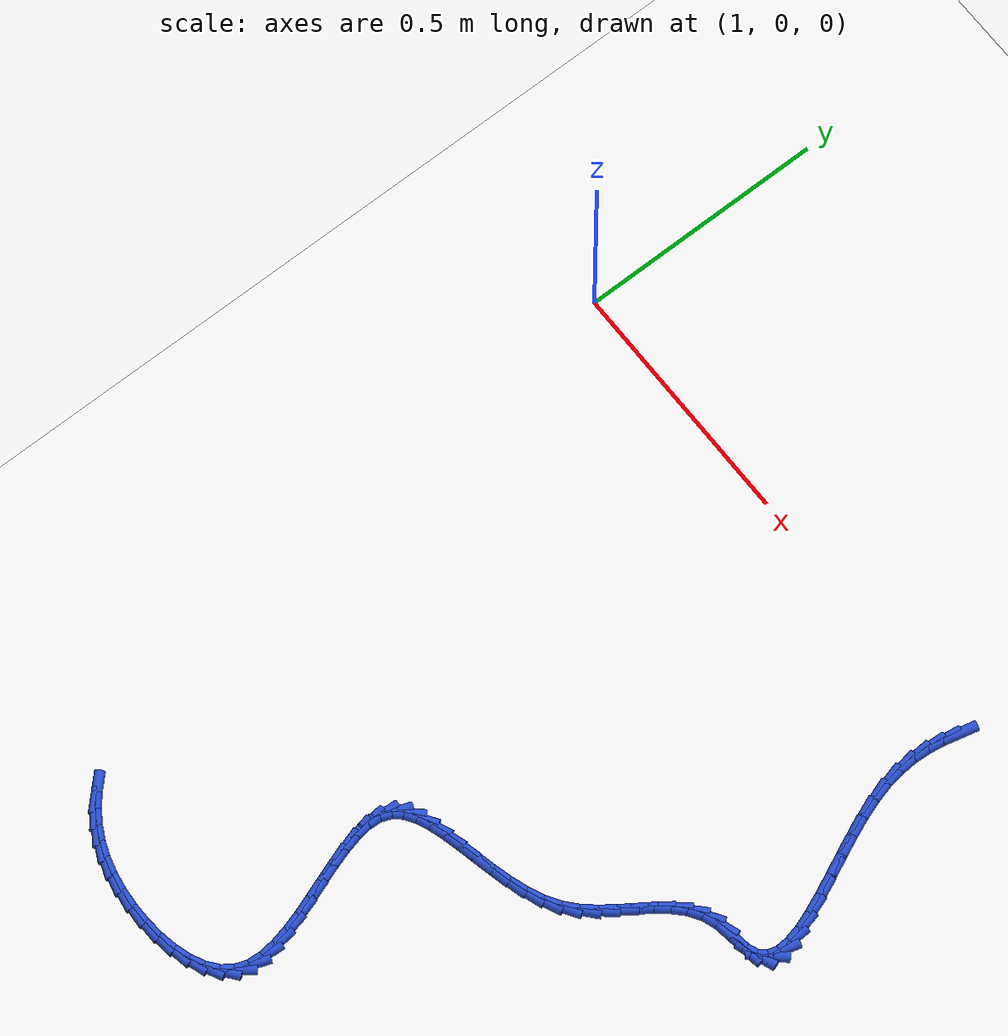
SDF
<sdf version="1.6">
 <world name="default">
  <model name="ground_plane">
   <static>1</static>
   <link name="link">
    <collision name="collision">
     <geometry><plane><normal>0 0 1</normal><size>100 100</size></plane></geometry>
     <surface><friction><ode><mu>100</mu><mu2>50</mu2></ode></friction></surface>
    </collision>
    <visual name="visual">
     <cast_shadows>0</cast_shadows>
     <geometry><plane><normal>0 0 1</normal><size>100 100</size></plane></geometry>
     <material>
      <script><uri>file://media/materials/scripts/gazebo.material</uri><name>Gazebo/WhiteGlow</name></script>
     </material>
    </visual>
   </link>
  </model>
  <model name="line">
   <link name="link_134">
    <pose>2.0532246523718296 -0.014180326723908926 0.01 0 1.57 1.330796894045094</pose>
    <collision name="collision">
     <geometry><cylinder><radius>0.01</radius><length>0.08</length></cylinder></geometry>
    </collision>
    <visual name="visual">
     <material>
      <script><name>Gazebo/Blue</name><uri>file://media/materials/scripts/gazebo.material</uri></script>
     </material>
     <geometry><cylinder><radius>0.01</radius><length>0.08</length></cylinder></geometry>
    </visual>
   </link>
   <link name="link_135">
    <pose>2.046154351031306 -0.043072178536533924 0.01 0 1.57 1.4222208318434437</pose>
    <collision name="collision">
     <geometry><cylinder><radius>0.01</radius><length>0.08</length></cylinder></geometry>
    </collision>
    <visual name="visual">
     <material>
      <script><name>Gazebo/Blue</name><uri>file://media/materials/scripts/gazebo.material</uri></script>
     </material>
     <geometry><cylinder><radius>0.01</radius><length>0.08</length></cylinder></geometry>
    </visual>
   </link>
   <link name="link_136">
    <pose>2.0416905816031337 -0.07289456322484658 0.01 0 1.57 1.5224544691791195</pose>
    <collision name="collision">
     <geometry><cylinder><radius>0.01</radius><length>0.08</length></cylinder></geometry>
    </collision>
    <visual name="visual">
     <material>
      <script><name>Gazebo/Blue</name><uri>file://media/materials/scripts/gazebo.material</uri></script>
     </material>
     <geometry><cylinder><radius>0.01</radius><length>0.08</length></cylinder></geometry>
    </visual>
   </link>
   <link name="link_137">
    <pose>2.040192248023933 -0.10386495413796595 0.01 0 1.57 -1.5143862495319844</pose>
    <collision name="collision">
     <geometry><cylinder><radius>0.01</radius><length>0.08</length></cylinder></geometry>
    </collision>
    <visual name="visual">
     <material>
      <script><name>Gazebo/Blue</name><uri>file://media/materials/scripts/gazebo.material</uri></script>
     </material>
     <geometry><cylinder><radius>0.01</radius><length>0.08</length></cylinder></geometry>
    </visual>
   </link>
   <link name="link_138">
    <pose>2.0420182542303227 -0.13620082462501418 0.01 0 1.57 -1.4097779234324692</pose>
    <collision name="collision">
     <geometry><cylinder><radius>0.01</radius><length>0.08</length></cylinder></geometry>
    </collision>
    <visual name="visual">
     <material>
      <script><name>Gazebo/Blue</name><uri>file://media/materials/scripts/gazebo.material</uri></script>
     </material>
     <geometry><cylinder><radius>0.01</radius><length>0.08</length></cylinder></geometry>
    </visual>
   </link>
   <link name="link_139">
    <pose>2.0475275041589223 -0.17011964803510976 0.01 0 1.57 -1.3099488879277494</pose>
    <collision name="collision">
     <geometry><cylinder><radius>0.01</radius><length>0.08</length></cylinder></geometry>
    </collision>
    <visual name="visual">
     <material>
      <script><name>Gazebo/Blue</name><uri>file://media/materials/scripts/gazebo.material</uri></script>
     </material>
     <geometry><cylinder><radius>0.01</radius><length>0.08</length></cylinder></geometry>
    </visual>
   </link>
   <link name="link_140">
    <pose>2.0570587652187364 -0.20582672921039344 0.01 0 1.57 -1.2299598485326666</pose>
    <collision name="collision">
     <geometry><cylinder><radius>0.01</radius><length>0.08</length></cylinder></geometry>
    </collision>
    <visual name="visual">
     <material>
      <script><name>Gazebo/Blue</name><uri>file://media/materials/scripts/gazebo.material</uri></script>
     </material>
     <geometry><cylinder><radius>0.01</radius><length>0.08</length></cylinder></geometry>
    </visual>
   </link>
   <link name="link_141">
    <pose>2.070288388467689 -0.24312707468204922 0.01 0 1.57 -1.1785982197315994</pose>
    <collision name="collision">
     <geometry><cylinder><radius>0.01</radius><length>0.08</length></cylinder></geometry>
    </collision>
    <visual name="visual">
     <material>
      <script><name>Gazebo/Blue</name><uri>file://media/materials/scripts/gazebo.material</uri></script>
     </material>
     <geometry><cylinder><radius>0.01</radius><length>0.08</length></cylinder></geometry>
    </visual>
   </link>
   <link name="link_142">
    <pose>2.0860960352224343 -0.2813442512383151 0.01 0 1.57 -1.1495665495712435</pose>
    <collision name="collision">
     <geometry><cylinder><radius>0.01</radius><length>0.08</length></cylinder></geometry>
    </collision>
    <visual name="visual">
     <material>
      <script><name>Gazebo/Blue</name><uri>file://media/materials/scripts/gazebo.material</uri></script>
     </material>
     <geometry><cylinder><radius>0.01</radius><length>0.08</length></cylinder></geometry>
    </visual>
   </link>
   <link name="link_143">
    <pose>2.103314088485448 -0.3197732553743234 0.01 0 1.57 -1.1394321719167497</pose>
    <collision name="collision">
     <geometry><cylinder><radius>0.01</radius><length>0.08</length></cylinder></geometry>
    </collision>
    <visual name="visual">
     <material>
      <script><name>Gazebo/Blue</name><uri>file://media/materials/scripts/gazebo.material</uri></script>
     </material>
     <geometry><cylinder><radius>0.01</radius><length>0.08</length></cylinder></geometry>
    </visual>
   </link>
   <link name="link_144">
    <pose>2.1207749312592035 -0.3577090835852017 0.01 0 1.57 -1.1478501996417236</pose>
    <collision name="collision">
     <geometry><cylinder><radius>0.01</radius><length>0.08</length></cylinder></geometry>
    </collision>
    <visual name="visual">
     <material>
      <script><name>Gazebo/Blue</name><uri>file://media/materials/scripts/gazebo.material</uri></script>
     </material>
     <geometry><cylinder><radius>0.01</radius><length>0.08</length></cylinder></geometry>
    </visual>
   </link>
   <link name="link_145">
    <pose>2.137310946546176 -0.3944467323660825 0.01 0 1.57 -1.1777380187251918</pose>
    <collision name="collision">
     <geometry><cylinder><radius>0.01</radius><length>0.08</length></cylinder></geometry>
    </collision>
    <visual name="visual">
     <material>
      <script><name>Gazebo/Blue</name><uri>file://media/materials/scripts/gazebo.material</uri></script>
     </material>
     <geometry><cylinder><radius>0.01</radius><length>0.08</length></cylinder></geometry>
    </visual>
   </link>
   <link name="link_146">
    <pose>2.1517545173488393 -0.42928119821209365 0.01 0 1.57 -1.2367691804471364</pose>
    <collision name="collision">
     <geometry><cylinder><radius>0.01</radius><length>0.08</length></cylinder></geometry>
    </collision>
    <visual name="visual">
     <material>
      <script><name>Gazebo/Blue</name><uri>file://media/materials/scripts/gazebo.material</uri></script>
     </material>
     <geometry><cylinder><radius>0.01</radius><length>0.08</length></cylinder></geometry>
    </visual>
   </link>
   <link name="link_147">
    <pose>2.1629380266696687 -0.46150747761836725 0.01 0 1.57 -1.3412546699868313</pose>
    <collision name="collision">
     <geometry><cylinder><radius>0.01</radius><length>0.08</length></cylinder></geometry>
    </collision>
    <visual name="visual">
     <material>
      <script><name>Gazebo/Blue</name><uri>file://media/materials/scripts/gazebo.material</uri></script>
     </material>
     <geometry><cylinder><radius>0.01</radius><length>0.08</length></cylinder></geometry>
    </visual>
   </link>
   <link name="link_148">
    <pose>2.1696938575111373 -0.4904205670800312 0.01 0 1.57 -1.5242126506233136</pose>
    <collision name="collision">
     <geometry><cylinder><radius>0.01</radius><length>0.08</length></cylinder></geometry>
    </collision>
    <visual name="visual">
     <material>
      <script><name>Gazebo/Blue</name><uri>file://media/materials/scripts/gazebo.material</uri></script>
     </material>
     <geometry><cylinder><radius>0.01</radius><length>0.08</length></cylinder></geometry>
    </visual>
   </link>
   <link name="link_149">
    <pose>2.170854392875721 -0.5153154630922175 0.01 0 1.57 1.2998896380855545</pose>
    <collision name="collision">
     <geometry><cylinder><radius>0.01</radius><length>0.08</length></cylinder></geometry>
    </collision>
    <visual name="visual">
     <material>
      <script><name>Gazebo/Blue</name><uri>file://media/materials/scripts/gazebo.material</uri></script>
     </material>
     <geometry><cylinder><radius>0.01</radius><length>0.08</length></cylinder></geometry>
    </visual>
   </link>
   <link name="link_150">
    <pose>2.165252015765893 -0.5354871621500548 0.01 0 1.57 0.8281848322031834</pose>
    <collision name="collision">
     <geometry><cylinder><radius>0.01</radius><length>0.08</length></cylinder></geometry>
    </collision>
    <visual name="visual">
     <material>
      <script><name>Gazebo/Blue</name><uri>file://media/materials/scripts/gazebo.material</uri></script>
     </material>
     <geometry><cylinder><radius>0.01</radius><length>0.08</length></cylinder></geometry>
    </visual>
   </link>
   <link name="link_151">
    <pose>2.15171910918413 -0.5502306607486738 0.01 0 1.57 0.3648313273554256</pose>
    <collision name="collision">
     <geometry><cylinder><radius>0.01</radius><length>0.08</length></cylinder></geometry>
    </collision>
    <visual name="visual">
     <material>
      <script><name>Gazebo/Blue</name><uri>file://media/materials/scripts/gazebo.material</uri></script>
     </material>
     <geometry><cylinder><radius>0.01</radius><length>0.08</length></cylinder></geometry>
    </visual>
   </link>
   <link name="link_152">
    <pose>2.1291146852565244 -0.5588639405568624 0.01 0 1.57 0.13124890468324446</pose>
    <collision name="collision">
     <geometry><cylinder><radius>0.01</radius><length>0.08</length></cylinder></geometry>
    </collision>
    <visual name="visual">
     <material>
      <script><name>Gazebo/Blue</name><uri>file://media/materials/scripts/gazebo.material</uri></script>
     </material>
     <geometry><cylinder><radius>0.01</radius><length>0.08</length></cylinder></geometry>
    </visual>
   </link>
   <link name="link_153">
    <pose>2.0988009009974857 -0.5628655958406734 0.01 0 1.57 0.1466052524842702</pose>
    <collision name="collision">
     <geometry><cylinder><radius>0.01</radius><length>0.08</length></cylinder></geometry>
    </collision>
    <visual name="visual">
     <material>
      <script><name>Gazebo/Blue</name><uri>file://media/materials/scripts/gazebo.material</uri></script>
     </material>
     <geometry><cylinder><radius>0.01</radius><length>0.08</length></cylinder></geometry>
    </visual>
   </link>
   <link name="link_154">
    <pose>2.0666559408491967 -0.567612271592508 0.01 0 1.57 0.3477822611670278</pose>
    <collision name="collision">
     <geometry><cylinder><radius>0.01</radius><length>0.08</length></cylinder></geometry>
    </collision>
    <visual name="visual">
     <material>
      <script><name>Gazebo/Blue</name><uri>file://media/materials/scripts/gazebo.material</uri></script>
     </material>
     <geometry><cylinder><radius>0.01</radius><length>0.08</length></cylinder></geometry>
    </visual>
   </link>
   <link name="link_155">
    <pose>2.038073233551004 -0.5779739969091205 0.01 0 1.57 0.584012017187059</pose>
    <collision name="collision">
     <geometry><cylinder><radius>0.01</radius><length>0.08</length></cylinder></geometry>
    </collision>
    <visual name="visual">
     <material>
      <script><name>Gazebo/Blue</name><uri>file://media/materials/scripts/gazebo.material</uri></script>
     </material>
     <geometry><cylinder><radius>0.01</radius><length>0.08</length></cylinder></geometry>
    </visual>
   </link>
   <link name="link_156">
    <pose>2.013573378534224 -0.5941663859674395 0.01 0 1.57 0.7693353140724397</pose>
    <collision name="collision">
     <geometry><cylinder><radius>0.01</radius><length>0.08</length></cylinder></geometry>
    </collision>
    <visual name="visual">
     <material>
      <script><name>Gazebo/Blue</name><uri>file://media/materials/scripts/gazebo.material</uri></script>
     </material>
     <geometry><cylinder><radius>0.01</radius><length>0.08</length></cylinder></geometry>
    </visual>
   </link>
   <link name="link_157">
    <pose>1.9921322335939566 -0.6149295511230869 0.01 0 1.57 0.8923070942743198</pose>
    <collision name="collision">
     <geometry><cylinder><radius>0.01</radius><length>0.08</length></cylinder></geometry>
    </collision>
    <visual name="visual">
     <material>
      <script><name>Gazebo/Blue</name><uri>file://media/materials/scripts/gazebo.material</uri></script>
     </material>
     <geometry><cylinder><radius>0.01</radius><length>0.08</length></cylinder></geometry>
    </visual>
   </link>
   <link name="link_158">
    <pose>1.9727250353273396 -0.6390030113776278 0.01 0 1.57 0.9572058177261786</pose>
    <collision name="collision">
     <geometry><cylinder><radius>0.01</radius><length>0.08</length></cylinder></geometry>
    </collision>
    <visual name="visual">
     <material>
      <script><name>Gazebo/Blue</name><uri>file://media/materials/scripts/gazebo.material</uri></script>
     </material>
     <geometry><cylinder><radius>0.01</radius><length>0.08</length></cylinder></geometry>
    </visual>
   </link>
   <link name="link_159">
    <pose>1.9543270203315126 -0.6651262857326246 0.01 0 1.57 0.9707535589638124</pose>
    <collision name="collision">
     <geometry><cylinder><radius>0.01</radius><length>0.08</length></cylinder></geometry>
    </collision>
    <visual name="visual">
     <material>
      <script><name>Gazebo/Blue</name><uri>file://media/materials/scripts/gazebo.material</uri></script>
     </material>
     <geometry><cylinder><radius>0.01</radius><length>0.08</length></cylinder></geometry>
    </visual>
   </link>
   <link name="link_160">
    <pose>1.935913425203612 -0.692038893189641 0.01 0 1.57 0.9364867314761454</pose>
    <collision name="collision">
     <geometry><cylinder><radius>0.01</radius><length>0.08</length></cylinder></geometry>
    </collision>
    <visual name="visual">
     <material>
      <script><name>Gazebo/Blue</name><uri>file://media/materials/scripts/gazebo.material</uri></script>
     </material>
     <geometry><cylinder><radius>0.01</radius><length>0.08</length></cylinder></geometry>
    </visual>
   </link>
   <link name="link_161">
    <pose>1.9164594865407782 -0.7184803527502428 0.01 0 1.57 0.8543103418585201</pose>
    <collision name="collision">
     <geometry><cylinder><radius>0.01</radius><length>0.08</length></cylinder></geometry>
    </collision>
    <visual name="visual">
     <material>
      <script><name>Gazebo/Blue</name><uri>file://media/materials/scripts/gazebo.material</uri></script>
     </material>
     <geometry><cylinder><radius>0.01</radius><length>0.08</length></cylinder></geometry>
    </visual>
   </link>
   <link name="link_162">
    <pose>1.8949404409401496 -0.7431901834159912 0.01 0 1.57 0.7230700837270486</pose>
    <collision name="collision">
     <geometry><cylinder><radius>0.01</radius><length>0.08</length></cylinder></geometry>
    </collision>
    <visual name="visual">
     <material>
      <script><name>Gazebo/Blue</name><uri>file://media/materials/scripts/gazebo.material</uri></script>
     </material>
     <geometry><cylinder><radius>0.01</radius><length>0.08</length></cylinder></geometry>
    </visual>
   </link>
   <link name="link_163">
    <pose>1.8703315249988646 -0.7649079041884521 0.01 0 1.57 0.5594150345667862</pose>
    <collision name="collision">
     <geometry><cylinder><radius>0.01</radius><length>0.08</length></cylinder></geometry>
    </collision>
    <visual name="visual">
     <material>
      <script><name>Gazebo/Blue</name><uri>file://media/materials/scripts/gazebo.material</uri></script>
     </material>
     <geometry><cylinder><radius>0.01</radius><length>0.08</length></cylinder></geometry>
    </visual>
   </link>
   <link name="link_164">
    <pose>1.8419275662839238 -0.7826926151292007 0.01 0 1.57 0.4244976088249944</pose>
    <collision name="collision">
     <geometry><cylinder><radius>0.01</radius><length>0.08</length></cylinder></geometry>
    </collision>
    <visual name="visual">
     <material>
      <script><name>Gazebo/Blue</name><uri>file://media/materials/scripts/gazebo.material</uri></script>
     </material>
     <geometry><cylinder><radius>0.01</radius><length>0.08</length></cylinder></geometry>
    </visual>
   </link>
   <link name="link_165">
    <pose>1.8103741037505483 -0.7969540858052978 0.01 0 1.57 0.328975985001567</pose>
    <collision name="collision">
     <geometry><cylinder><radius>0.01</radius><length>0.08</length></cylinder></geometry>
    </collision>
    <visual name="visual">
     <material>
      <script><name>Gazebo/Blue</name><uri>file://media/materials/scripts/gazebo.material</uri></script>
     </material>
     <geometry><cylinder><radius>0.01</radius><length>0.08</length></cylinder></geometry>
    </visual>
   </link>
   <link name="link_166">
    <pose>1.7766734530623214 -0.8084588514292593 0.01 0 1.57 0.2665531659210687</pose>
    <collision name="collision">
     <geometry><cylinder><radius>0.01</radius><length>0.08</length></cylinder></geometry>
    </collision>
    <visual name="visual">
     <material>
      <script><name>Gazebo/Blue</name><uri>file://media/materials/scripts/gazebo.material</uri></script>
     </material>
     <geometry><cylinder><radius>0.01</radius><length>0.08</length></cylinder></geometry>
    </visual>
   </link>
   <link name="link_167">
    <pose>1.7418279319691445 -0.8179734492998629 0.01 0 1.57 0.23267380699856835</pose>
    <collision name="collision">
     <geometry><cylinder><radius>0.01</radius><length>0.08</length></cylinder></geometry>
    </collision>
    <visual name="visual">
     <material>
      <script><name>Gazebo/Blue</name><uri>file://media/materials/scripts/gazebo.material</uri></script>
     </material>
     <geometry><cylinder><radius>0.01</radius><length>0.08</length></cylinder></geometry>
    </visual>
   </link>
   <link name="link_168">
    <pose>1.706839858220927 -0.8262644167158857 0.01 0 1.57 0.2256331893948783</pose>
    <collision name="collision">
     <geometry><cylinder><radius>0.01</radius><length>0.08</length></cylinder></geometry>
    </collision>
    <visual name="visual">
     <material>
      <script><name>Gazebo/Blue</name><uri>file://media/materials/scripts/gazebo.material</uri></script>
     </material>
     <geometry><cylinder><radius>0.01</radius><length>0.08</length></cylinder></geometry>
    </visual>
   </link>
   <link name="link_169">
    <pose>1.6727115495675706 -0.8340982909761044 0.01 0 1.57 0.24721648304733315</pose>
    <collision name="collision">
     <geometry><cylinder><radius>0.01</radius><length>0.08</length></cylinder></geometry>
    </collision>
    <visual name="visual">
     <material>
      <script><name>Gazebo/Blue</name><uri>file://media/materials/scripts/gazebo.material</uri></script>
     </material>
     <geometry><cylinder><radius>0.01</radius><length>0.08</length></cylinder></geometry>
    </visual>
   </link>
   <link name="link_170">
    <pose>1.6404453237589833 -0.8422416093792966 0.01 0 1.57 0.30385223803553446</pose>
    <collision name="collision">
     <geometry><cylinder><radius>0.01</radius><length>0.08</length></cylinder></geometry>
    </collision>
    <visual name="visual">
     <material>
      <script><name>Gazebo/Blue</name><uri>file://media/materials/scripts/gazebo.material</uri></script>
     </material>
     <geometry><cylinder><radius>0.01</radius><length>0.08</length></cylinder></geometry>
    </visual>
   </link>
   <link name="link_171">
    <pose>1.611043498545069 -0.851460909224239 0.01 0 1.57 0.40879590833716223</pose>
    <collision name="collision">
     <geometry><cylinder><radius>0.01</radius><length>0.08</length></cylinder></geometry>
    </collision>
    <visual name="visual">
     <material>
      <script><name>Gazebo/Blue</name><uri>file://media/materials/scripts/gazebo.material</uri></script>
     </material>
     <geometry><cylinder><radius>0.01</radius><length>0.08</length></cylinder></geometry>
    </visual>
   </link>
   <link name="link_172">
    <pose>1.5855083916757333 -0.8625227278097093 0.01 0 1.57 0.5844261937588887</pose>
    <collision name="collision">
     <geometry><cylinder><radius>0.01</radius><length>0.08</length></cylinder></geometry>
    </collision>
    <visual name="visual">
     <material>
      <script><name>Gazebo/Blue</name><uri>file://media/materials/scripts/gazebo.material</uri></script>
     </material>
     <geometry><cylinder><radius>0.01</radius><length>0.08</length></cylinder></geometry>
    </visual>
   </link>
   <link name="link_173">
    <pose>1.5648423209008815 -0.8761936024344836 0.01 0 1.57 0.8559988193514022</pose>
    <collision name="collision">
     <geometry><cylinder><radius>0.01</radius><length>0.08</length></cylinder></geometry>
    </collision>
    <visual name="visual">
     <material>
      <script><name>Gazebo/Blue</name><uri>file://media/materials/scripts/gazebo.material</uri></script>
     </material>
     <geometry><cylinder><radius>0.01</radius><length>0.08</length></cylinder></geometry>
    </visual>
   </link>
   <link name="link_174">
    <pose>1.5500476039704185 -0.8932400703973402 0.01 0 1.57 1.2070682495283374</pose>
    <collision name="collision">
     <geometry><cylinder><radius>0.01</radius><length>0.08</length></cylinder></geometry>
    </collision>
    <visual name="visual">
     <material>
      <script><name>Gazebo/Blue</name><uri>file://media/materials/scripts/gazebo.material</uri></script>
     </material>
     <geometry><cylinder><radius>0.01</radius><length>0.08</length></cylinder></geometry>
    </visual>
   </link>
   <link name="link_175">
    <pose>1.5420107547033803 -0.9143527199068225 0.01 0 1.57 1.5046483054805113</pose>
    <collision name="collision">
     <geometry><cylinder><radius>0.01</radius><length>0.08</length></cylinder></geometry>
    </collision>
    <visual name="visual">
     <material>
      <script><name>Gazebo/Blue</name><uri>file://media/materials/scripts/gazebo.material</uri></script>
     </material>
     <geometry><cylinder><radius>0.01</radius><length>0.08</length></cylinder></geometry>
    </visual>
   </link>
   <link name="link_176">
    <pose>1.5403520563019273 -0.9393916918571801 0.01 0 1.57 -1.4457437224903855</pose>
    <collision name="collision">
     <geometry><cylinder><radius>0.01</radius><length>0.08</length></cylinder></geometry>
    </collision>
    <visual name="visual">
     <material>
      <script><name>Gazebo/Blue</name><uri>file://media/materials/scripts/gazebo.material</uri></script>
     </material>
     <geometry><cylinder><radius>0.01</radius><length>0.08</length></cylinder></geometry>
    </visual>
   </link>
   <link name="link_177">
    <pose>1.5439113141313336 -0.9677052569391799 0.01 0 1.57 -1.3296760468069413</pose>
    <collision name="collision">
     <geometry><cylinder><radius>0.01</radius><length>0.08</length></cylinder></geometry>
    </collision>
    <visual name="visual">
     <material>
      <script><name>Gazebo/Blue</name><uri>file://media/materials/scripts/gazebo.material</uri></script>
     </material>
     <geometry><cylinder><radius>0.01</radius><length>0.08</length></cylinder></geometry>
    </visual>
   </link>
   <link name="link_178">
    <pose>1.5515168691468275 -0.9986341670011281 0.01 0 1.57 -1.2622802091808014</pose>
    <collision name="collision">
     <geometry><cylinder><radius>0.01</radius><length>0.08</length></cylinder></geometry>
    </collision>
    <visual name="visual">
     <material>
      <script><name>Gazebo/Blue</name><uri>file://media/materials/scripts/gazebo.material</uri></script>
     </material>
     <geometry><cylinder><radius>0.01</radius><length>0.08</length></cylinder></geometry>
    </visual>
   </link>
   <link name="link_179">
    <pose>1.5619970623036357 -1.0315191738913259 0.01 0 1.57 -1.2284116646601082</pose>
    <collision name="collision">
     <geometry><cylinder><radius>0.01</radius><length>0.08</length></cylinder></geometry>
    </collision>
    <visual name="visual">
     <material>
      <script><name>Gazebo/Blue</name><uri>file://media/materials/scripts/gazebo.material</uri></script>
     </material>
     <geometry><cylinder><radius>0.01</radius><length>0.08</length></cylinder></geometry>
    </visual>
   </link>
   <link name="link_180">
    <pose>1.574180234556986 -1.0657010294580789 0.01 0 1.57 -1.2206848572210278</pose>
    <collision name="collision">
     <geometry><cylinder><radius>0.01</radius><length>0.08</length></cylinder></geometry>
    </collision>
    <visual name="visual">
     <material>
      <script><name>Gazebo/Blue</name><uri>file://media/materials/scripts/gazebo.material</uri></script>
     </material>
     <geometry><cylinder><radius>0.01</radius><length>0.08</length></cylinder></geometry>
    </visual>
   </link>
   <link name="link_181">
    <pose>1.5868947268621059 -1.1005204855496886 0.01 0 1.57 -1.2368142102863176</pose>
    <collision name="collision">
     <geometry><cylinder><radius>0.01</radius><length>0.08</length></cylinder></geometry>
    </collision>
    <visual name="visual">
     <material>
      <script><name>Gazebo/Blue</name><uri>file://media/materials/scripts/gazebo.material</uri></script>
     </material>
     <geometry><cylinder><radius>0.01</radius><length>0.08</length></cylinder></geometry>
    </visual>
   </link>
   <link name="link_182">
    <pose>1.5989688801742232 -1.1353182940144606 0.01 0 1.57 -1.2786114490668157</pose>
    <collision name="collision">
     <geometry><cylinder><radius>0.01</radius><length>0.08</length></cylinder></geometry>
    </collision>
    <visual name="visual">
     <material>
      <script><name>Gazebo/Blue</name><uri>file://media/materials/scripts/gazebo.material</uri></script>
     </material>
     <geometry><cylinder><radius>0.01</radius><length>0.08</length></cylinder></geometry>
    </visual>
   </link>
   <link name="link_183">
    <pose>1.6092310354485657 -1.1694352067006986 0.01 0 1.57 -1.3522793890049691</pose>
    <collision name="collision">
     <geometry><cylinder><radius>0.01</radius><length>0.08</length></cylinder></geometry>
    </collision>
    <visual name="visual">
     <material>
      <script><name>Gazebo/Blue</name><uri>file://media/materials/scripts/gazebo.material</uri></script>
     </material>
     <geometry><cylinder><radius>0.01</radius><length>0.08</length></cylinder></geometry>
    </visual>
   </link>
   <link name="link_184">
    <pose>1.6165095336403603 -1.2022119754567047 0.01 0 1.57 -1.4696659563655006</pose>
    <collision name="collision">
     <geometry><cylinder><radius>0.01</radius><length>0.08</length></cylinder></geometry>
    </collision>
    <visual name="visual">
     <material>
      <script><name>Gazebo/Blue</name><uri>file://media/materials/scripts/gazebo.material</uri></script>
     </material>
     <geometry><cylinder><radius>0.01</radius><length>0.08</length></cylinder></geometry>
    </visual>
   </link>
   <link name="link_185">
    <pose>1.6196327157048351 -1.232989352130784 0.01 0 1.57 1.4925816690003666</pose>
    <collision name="collision">
     <geometry><cylinder><radius>0.01</radius><length>0.08</length></cylinder></geometry>
    </collision>
    <visual name="visual">
     <material>
      <script><name>Gazebo/Blue</name><uri>file://media/materials/scripts/gazebo.material</uri></script>
     </material>
     <geometry><cylinder><radius>0.01</radius><length>0.08</length></cylinder></geometry>
    </visual>
   </link>
   <link name="link_186">
    <pose>1.6174289225972174 -1.2611080885712385 0.01 0 1.57 1.2333666916336066</pose>
    <collision name="collision">
     <geometry><cylinder><radius>0.01</radius><length>0.08</length></cylinder></geometry>
    </collision>
    <visual name="visual">
     <material>
      <script><name>Gazebo/Blue</name><uri>file://media/materials/scripts/gazebo.material</uri></script>
     </material>
     <geometry><cylinder><radius>0.01</radius><length>0.08</length></cylinder></geometry>
    </visual>
   </link>
   <link name="link_187">
    <pose>1.6087274883167877 -1.2859092747339376 0.01 0 1.57 0.9257268420244377</pose>
    <collision name="collision">
     <geometry><cylinder><radius>0.01</radius><length>0.08</length></cylinder></geometry>
    </collision>
    <visual name="visual">
     <material>
      <script><name>Gazebo/Blue</name><uri>file://media/materials/scripts/gazebo.material</uri></script>
     </material>
     <geometry><cylinder><radius>0.01</radius><length>0.08</length></cylinder></geometry>
    </visual>
   </link>
   <link name="link_188">
    <pose>1.5929150692852858 -1.3069237554258373 0.01 0 1.57 0.6642170831975657</pose>
    <collision name="collision">
     <geometry><cylinder><radius>0.01</radius><length>0.08</length></cylinder></geometry>
    </collision>
    <visual name="visual">
     <material>
      <script><name>Gazebo/Blue</name><uri>file://media/materials/scripts/gazebo.material</uri></script>
     </material>
     <geometry><cylinder><radius>0.01</radius><length>0.08</length></cylinder></geometry>
    </visual>
   </link>
   <link name="link_189">
    <pose>1.5708630912697765 -1.3241879036269493 0.01 0 1.57 0.4649914062826462</pose>
    <collision name="collision">
     <geometry><cylinder><radius>0.01</radius><length>0.08</length></cylinder></geometry>
    </collision>
    <visual name="visual">
     <material>
      <script><name>Gazebo/Blue</name><uri>file://media/materials/scripts/gazebo.material</uri></script>
     </material>
     <geometry><cylinder><radius>0.01</radius><length>0.08</length></cylinder></geometry>
    </visual>
   </link>
   <link name="link_190">
    <pose>1.5436875387307185 -1.3378213586575143 0.01 0 1.57 0.31388031401728683</pose>
    <collision name="collision">
     <geometry><cylinder><radius>0.01</radius><length>0.08</length></cylinder></geometry>
    </collision>
    <visual name="visual">
     <material>
      <script><name>Gazebo/Blue</name><uri>file://media/materials/scripts/gazebo.material</uri></script>
     </material>
     <geometry><cylinder><radius>0.01</radius><length>0.08</length></cylinder></geometry>
    </visual>
   </link>
   <link name="link_191">
    <pose>1.5125043961285654 -1.3479437598377753 0.01 0 1.57 0.19502513093470364</pose>
    <collision name="collision">
     <geometry><cylinder><radius>0.01</radius><length>0.08</length></cylinder></geometry>
    </collision>
    <visual name="visual">
     <material>
      <script><name>Gazebo/Blue</name><uri>file://media/materials/scripts/gazebo.material</uri></script>
     </material>
     <geometry><cylinder><radius>0.01</radius><length>0.08</length></cylinder></geometry>
    </visual>
   </link>
   <link name="link_192">
    <pose>1.478429647923776 -1.3546747464879736 0.01 0 1.57 0.09619246789340863</pose>
    <collision name="collision">
     <geometry><cylinder><radius>0.01</radius><length>0.08</length></cylinder></geometry>
    </collision>
    <visual name="visual">
     <material>
      <script><name>Gazebo/Blue</name><uri>file://media/materials/scripts/gazebo.material</uri></script>
     </material>
     <geometry><cylinder><radius>0.01</radius><length>0.08</length></cylinder></geometry>
    </visual>
   </link>
   <link name="link_193">
    <pose>1.4425792785768048 -1.3581339579283505 0.01 0 1.57 0.008410524774937624</pose>
    <collision name="collision">
     <geometry><cylinder><radius>0.01</radius><length>0.08</length></cylinder></geometry>
    </collision>
    <visual name="visual">
     <material>
      <script><name>Gazebo/Blue</name><uri>file://media/materials/scripts/gazebo.material</uri></script>
     </material>
     <geometry><cylinder><radius>0.01</radius><length>0.08</length></cylinder></geometry>
    </visual>
   </link>
   <link name="link_194">
    <pose>1.4060692725481077 -1.358441033479149 0.01 0 1.57 -0.07544996876135611</pose>
    <collision name="collision">
     <geometry><cylinder><radius>0.01</radius><length>0.08</length></cylinder></geometry>
    </collision>
    <visual name="visual">
     <material>
      <script><name>Gazebo/Blue</name><uri>file://media/materials/scripts/gazebo.material</uri></script>
     </material>
     <geometry><cylinder><radius>0.01</radius><length>0.08</length></cylinder></geometry>
    </visual>
   </link>
   <link name="link_195">
    <pose>1.3700156142981426 -1.3557156124606102 0.01 0 1.57 -0.16208244719158496</pose>
    <collision name="collision">
     <geometry><cylinder><radius>0.01</radius><length>0.08</length></cylinder></geometry>
    </collision>
    <visual name="visual">
     <material>
      <script><name>Gazebo/Blue</name><uri>file://media/materials/scripts/gazebo.material</uri></script>
     </material>
     <geometry><cylinder><radius>0.01</radius><length>0.08</length></cylinder></geometry>
    </visual>
   </link>
   <link name="link_196">
    <pose>1.3355342882870025 -1.3500773341929448 0.01 0 1.57 -0.25804418894186376</pose>
    <collision name="collision">
     <geometry><cylinder><radius>0.01</radius><length>0.08</length></cylinder></geometry>
    </collision>
    <visual name="visual">
     <material>
      <script><name>Gazebo/Blue</name><uri>file://media/materials/scripts/gazebo.material</uri></script>
     </material>
     <geometry><cylinder><radius>0.01</radius><length>0.08</length></cylinder></geometry>
    </visual>
   </link>
   <link name="link_197">
    <pose>1.3035115363728396 -1.3416256202204782 0.01 0 1.57 -0.3631679892060928</pose>
    <collision name="collision">
     <geometry><cylinder><radius>0.01</radius><length>0.08</length></cylinder></geometry>
    </collision>
    <visual name="visual">
     <material>
      <script><name>Gazebo/Blue</name><uri>file://media/materials/scripts/gazebo.material</uri></script>
     </material>
     <geometry><cylinder><radius>0.01</radius><length>0.08</length></cylinder></geometry>
    </visual>
   </link>
   <link name="link_198">
    <pose>1.273917834457423 -1.3303793029816786 0.01 0 1.57 -0.473257441132743</pose>
    <collision name="collision">
     <geometry><cylinder><radius>0.01</radius><length>0.08</length></cylinder></geometry>
    </collision>
    <visual name="visual">
     <material>
      <script><name>Gazebo/Blue</name><uri>file://media/materials/scripts/gazebo.material</uri></script>
     </material>
     <geometry><cylinder><radius>0.01</radius><length>0.08</length></cylinder></geometry>
    </visual>
   </link>
   <link name="link_199">
    <pose>1.2464955152747756 -1.3163371378923114 0.01 0 1.57 -0.5834707357222293</pose>
    <collision name="collision">
     <geometry><cylinder><radius>0.01</radius><length>0.08</length></cylinder></geometry>
    </collision>
    <visual name="visual">
     <material>
      <script><name>Gazebo/Blue</name><uri>file://media/materials/scripts/gazebo.material</uri></script>
     </material>
     <geometry><cylinder><radius>0.01</radius><length>0.08</length></cylinder></geometry>
    </visual>
   </link>
   <link name="link_200">
    <pose>1.2209869115589167 -1.2994978803681412 0.01 0 1.57 -0.6887823141891737</pose>
    <collision name="collision">
     <geometry><cylinder><radius>0.01</radius><length>0.08</length></cylinder></geometry>
    </collision>
    <visual name="visual">
     <material>
      <script><name>Gazebo/Blue</name><uri>file://media/materials/scripts/gazebo.material</uri></script>
     </material>
     <geometry><cylinder><radius>0.01</radius><length>0.08</length></cylinder></geometry>
    </visual>
   </link>
   <link name="link_201">
    <pose>1.1971343560438679 -1.2798602858249337 0.01 0 1.57 -0.7850195062028835</pose>
    <collision name="collision">
     <geometry><cylinder><radius>0.01</radius><length>0.08</length></cylinder></geometry>
    </collision>
    <visual name="visual">
     <material>
      <script><name>Gazebo/Blue</name><uri>file://media/materials/scripts/gazebo.material</uri></script>
     </material>
     <geometry><cylinder><radius>0.01</radius><length>0.08</length></cylinder></geometry>
    </visual>
   </link>
  </model>
 </world>
</sdf>
